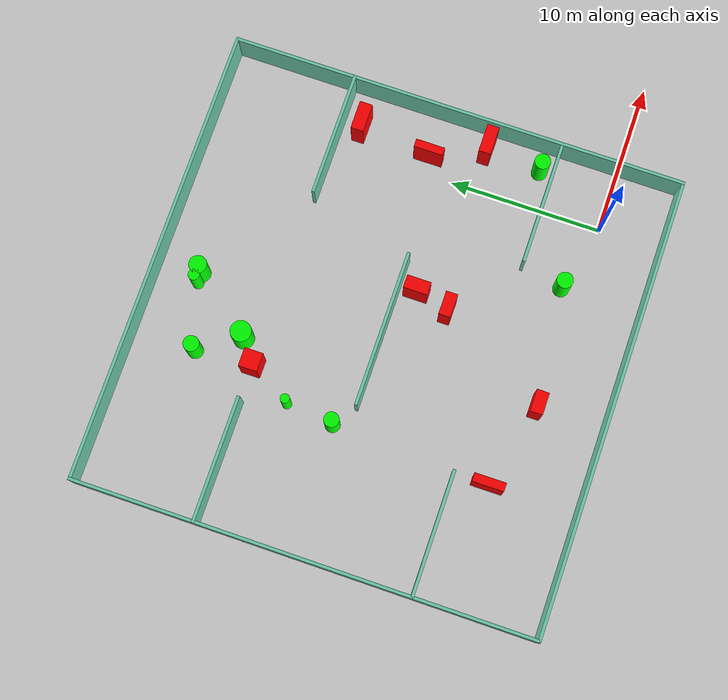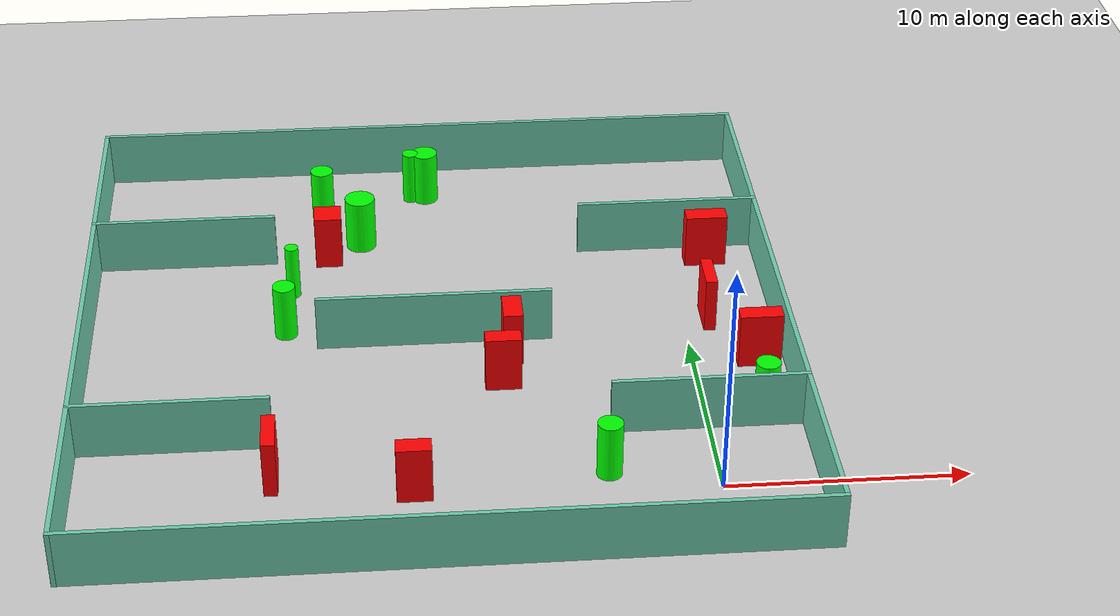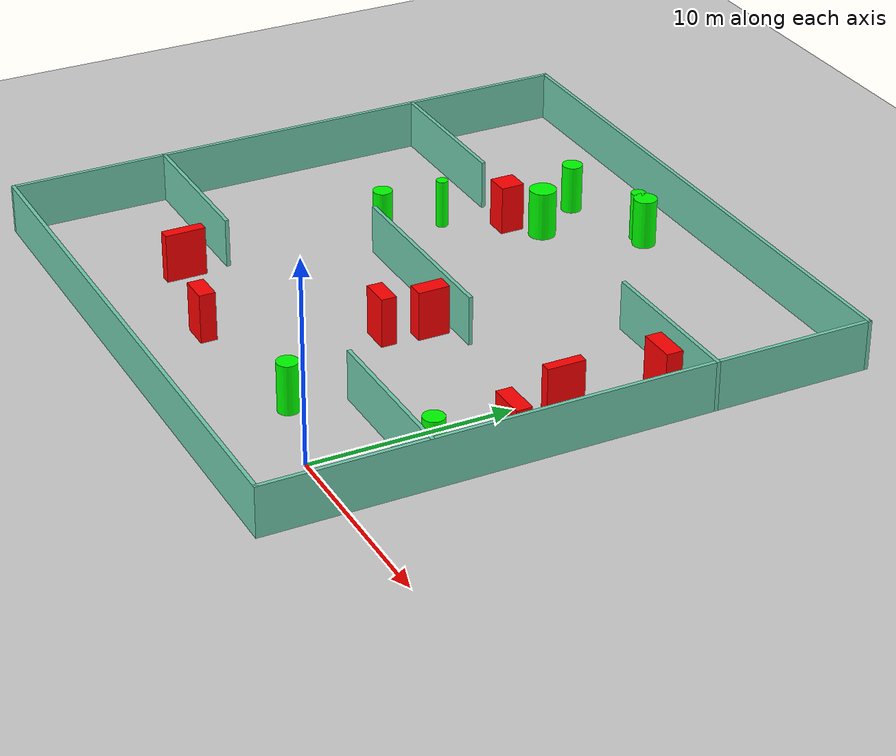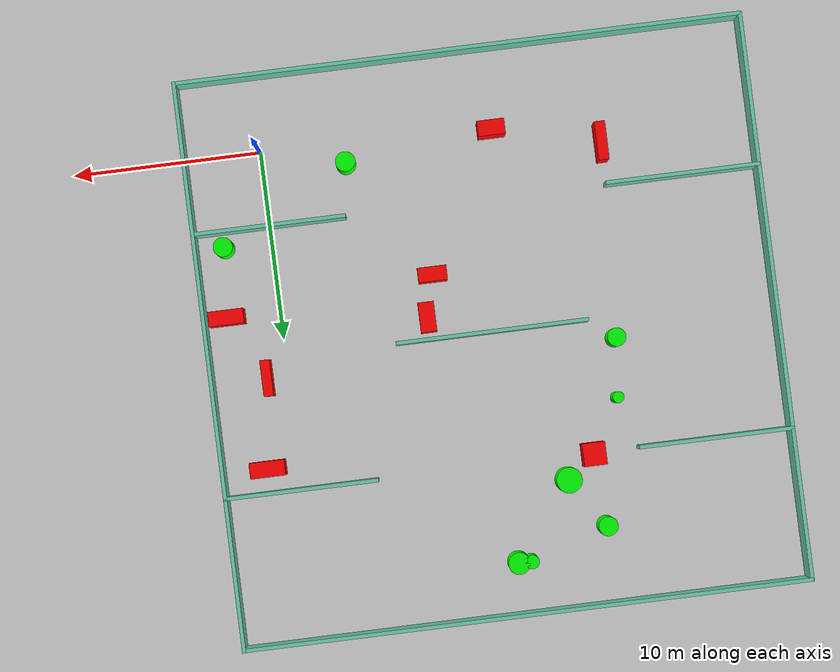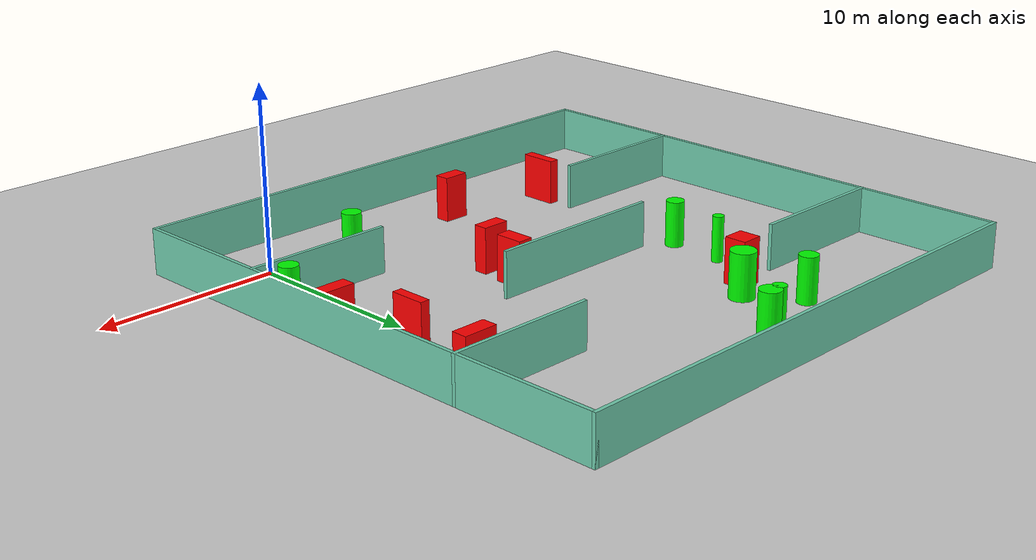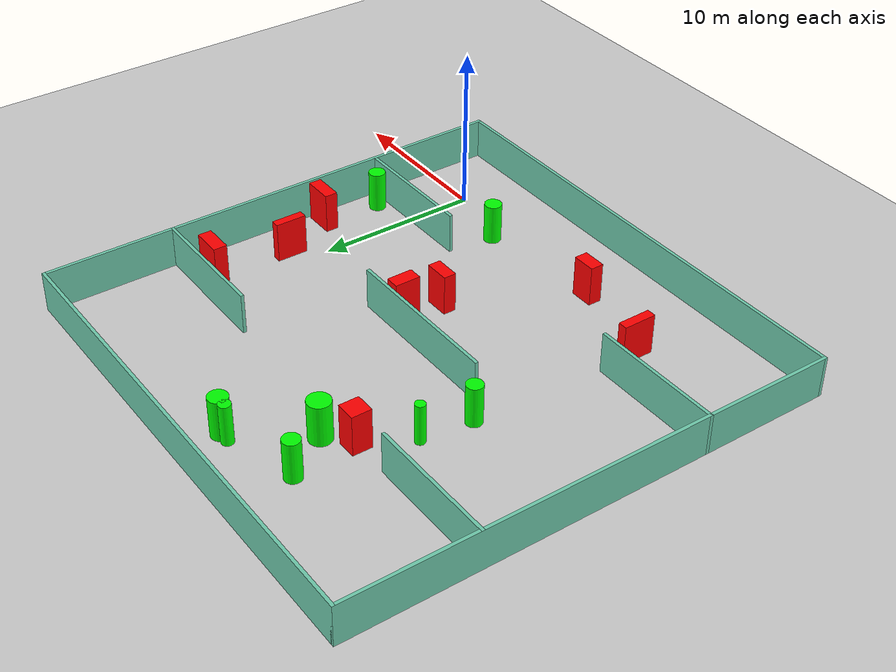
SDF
<sdf version="1.7">
 <world name="default">
  <light name="sun" type="directional">
   <pose>0 0 10 0 -0 0</pose>
   <diffuse>0.8 0.8 0.8 1</diffuse>
   <specular>0.2 0.2 0.2 1</specular>
   <attenuation>
    <range>1000</range>
    <constant>0.9</constant>
    <linear>0.01</linear>
    <quadratic>0.001</quadratic>
   </attenuation>
   <direction>-0.5 0.1 -0.9</direction>
   <spot><inner_angle>0</inner_angle><outer_angle>0</outer_angle><falloff>0</falloff></spot>
  </light>
  <model name="ground_plane">
   <static>1</static>
   <link name="link">
    <collision name="collision">
     <geometry><plane><normal>0 0 1</normal><size>100 100</size></plane></geometry>
     <surface>
      <contact><collide_bitmask>65535</collide_bitmask></contact>
      <friction><ode><mu>100</mu><mu2>50</mu2></ode></friction>
     </surface>
    </collision>
    <visual name="visual">
     <cast_shadows>0</cast_shadows>
     <geometry><plane><normal>0 0 1</normal><size>100 100</size></plane></geometry>
     <material>
      <script><uri>file://media/materials/scripts/gazebo.material</uri><name>Gazebo/Grey</name></script>
     </material>
    </visual>
   </link>
  </model>
  <gravity>0 0 -9.8</gravity>
  <magnetic_field>6e-06 2.3e-05 -4.2e-05</magnetic_field>
  <atmosphere type="adiabatic"/>
  <physics type="ode">
   <max_step_size>0.001</max_step_size>
   <real_time_factor>1</real_time_factor>
   <real_time_update_rate>1000</real_time_update_rate>
  </physics>
  <scene><ambient>0.4 0.4 0.4 1</ambient><background>0.7 0.7 0.7 1</background><shadows>1</shadows></scene>
  <spherical_coordinates>
   <surface_model>EARTH_WGS84</surface_model>
   <latitude_deg>0</latitude_deg>
   <longitude_deg>0</longitude_deg>
   <elevation>0</elevation>
   <heading_deg>0</heading_deg>
  </spherical_coordinates>
  <model name="my_base_walls">
   <link name="Wall_10">
    <collision name="Wall_10_Collision">
     <geometry><box><size>8.2 0.2 2.5</size></box></geometry>
     <pose>0 0 1.25 0 -0 0</pose>
    </collision>
    <visual name="Wall_10_Visual">
     <pose>0 0 1.25 0 -0 0</pose>
     <geometry><box><size>8.2 0.2 2.5</size></box></geometry>
     <material>
      <script><uri>file://media/materials/scripts/gazebo.material</uri><name>Gazebo/Grey</name></script>
      <ambient>0.435294 0.796078 0.67451 1</ambient>
     </material>
     <meta><layer>0</layer></meta>
    </visual>
    <pose>-11 -7 0 0 -0 0</pose>
   </link>
   <link name="Wall_12">
    <collision name="Wall_12_Collision">
     <geometry><box><size>8.2 0.2 2.5</size></box></geometry>
     <pose>0 0 1.25 0 -0 0</pose>
    </collision>
    <visual name="Wall_12_Visual">
     <pose>0 0 1.25 0 -0 0</pose>
     <geometry><box><size>8.2 0.2 2.5</size></box></geometry>
     <material>
      <script><uri>file://media/materials/scripts/gazebo.material</uri><name>Gazebo/Grey</name></script>
      <ambient>0.435294 0.796078 0.67451 1</ambient>
     </material>
     <meta><layer>0</layer></meta>
    </visual>
    <pose>-11 7 0 0 -0 0</pose>
   </link>
   <link name="Wall_14">
    <collision name="Wall_14_Collision">
     <geometry><box><size>8.2 0.2 2.5</size></box></geometry>
     <pose>0 0 1.25 0 -0 0</pose>
    </collision>
    <visual name="Wall_14_Visual">
     <pose>0 0 1.25 0 -0 0</pose>
     <geometry><box><size>8.2 0.2 2.5</size></box></geometry>
     <material>
      <script><uri>file://media/materials/scripts/gazebo.material</uri><name>Gazebo/Grey</name></script>
      <ambient>0.435294 0.796078 0.67451 1</ambient>
     </material>
     <meta><layer>0</layer></meta>
    </visual>
    <pose>11 7 0 0 -0 3.14159</pose>
   </link>
   <link name="Wall_16">
    <collision name="Wall_16_Collision">
     <geometry><box><size>10.2 0.2 2.5</size></box></geometry>
     <pose>0 0 1.25 0 -0 0</pose>
    </collision>
    <visual name="Wall_16_Visual">
     <pose>0 0 1.25 0 -0 0</pose>
     <geometry><box><size>10.2 0.2 2.5</size></box></geometry>
     <material>
      <script><uri>file://media/materials/scripts/gazebo.material</uri><name>Gazebo/Grey</name></script>
      <ambient>0.435294 0.796078 0.67451 1</ambient>
     </material>
     <meta><layer>0</layer></meta>
    </visual>
    <pose>0 0 0 0 -0 3.14159</pose>
   </link>
   <link name="Wall_2">
    <collision name="Wall_2_Collision">
     <geometry><box><size>30.2 0.2 2.5</size></box></geometry>
     <pose>0 0 1.25 0 -0 0</pose>
    </collision>
    <visual name="Wall_2_Visual">
     <pose>0 0 1.25 0 -0 0</pose>
     <geometry><box><size>30.2 0.2 2.5</size></box></geometry>
     <material>
      <script><uri>file://media/materials/scripts/gazebo.material</uri><name>Gazebo/Grey</name></script>
      <ambient>0.435294 0.796078 0.67451 1</ambient>
     </material>
     <meta><layer>0</layer></meta>
    </visual>
    <pose>0 -15 0 0 -0 3.14159</pose>
   </link>
   <link name="Wall_3">
    <collision name="Wall_3_Collision">
     <geometry><box><size>30.2 0.2 2.5</size></box></geometry>
     <pose>0 0 1.25 0 -0 0</pose>
    </collision>
    <visual name="Wall_3_Visual">
     <pose>0 0 1.25 0 -0 0</pose>
     <geometry><box><size>30.2 0.2 2.5</size></box></geometry>
     <material>
      <script><uri>file://media/materials/scripts/gazebo.material</uri><name>Gazebo/Grey</name></script>
      <ambient>0.435294 0.796078 0.67451 1</ambient>
     </material>
     <meta><layer>0</layer></meta>
    </visual>
    <pose>-15 0 0 0 -0 1.5708</pose>
   </link>
   <link name="Wall_4">
    <collision name="Wall_4_Collision">
     <geometry><box><size>30.2 0.2 2.5</size></box></geometry>
     <pose>0 0 1.25 0 -0 0</pose>
    </collision>
    <visual name="Wall_4_Visual">
     <pose>0 0 1.25 0 -0 0</pose>
     <geometry><box><size>30.2 0.2 2.5</size></box></geometry>
     <material>
      <script><uri>file://media/materials/scripts/gazebo.material</uri><name>Gazebo/Grey</name></script>
      <ambient>0.435294 0.796078 0.67451 1</ambient>
     </material>
     <meta><layer>0</layer></meta>
    </visual>
    <pose>0 15 0 0 -0 0</pose>
   </link>
   <link name="Wall_6">
    <collision name="Wall_6_Collision">
     <geometry><box><size>30.2 0.2 2.5</size></box></geometry>
     <pose>0 0 1.25 0 -0 0</pose>
    </collision>
    <visual name="Wall_6_Visual">
     <pose>0 0 1.25 0 -0 0</pose>
     <geometry><box><size>30.2 0.2 2.5</size></box></geometry>
     <material>
      <script><uri>file://media/materials/scripts/gazebo.material</uri><name>Gazebo/Grey</name></script>
      <ambient>0.435294 0.796078 0.67451 1</ambient>
     </material>
     <meta><layer>0</layer></meta>
    </visual>
    <pose>15 0 0 0 -0 1.5708</pose>
   </link>
   <link name="Wall_8">
    <collision name="Wall_8_Collision">
     <geometry><box><size>8.2 0.2 2.5</size></box></geometry>
     <pose>0 0 1.25 0 -0 0</pose>
    </collision>
    <visual name="Wall_8_Visual">
     <pose>0 0 1.25 0 -0 0</pose>
     <geometry><box><size>8.2 0.2 2.5</size></box></geometry>
     <material>
      <script><uri>file://media/materials/scripts/gazebo.material</uri><name>Gazebo/Grey</name></script>
      <ambient>0.435294 0.796078 0.67451 1</ambient>
     </material>
     <meta><layer>0</layer></meta>
    </visual>
    <pose>11 -7 0 0 -0 3.14159</pose>
   </link>
   <static>1</static>
   <pose>-11 11 0 0 -0 0</pose>
  </model>
  <model name="cylinder1">
   <static>1</static>
   <link name="link">
    <inertial>
     <mass>1</mass>
     <inertia><ixx>0.5</ixx><ixy>0</ixy><ixz>0</ixz><iyy>0.5</iyy><iyz>0</iyz><izz>1</izz></inertia>
    </inertial>
    <collision name="collision">
     <geometry><cylinder><radius>0.491930112179773</radius><length>2.5</length></cylinder></geometry>
    </collision>
    <visual name="visual">
     <geometry><cylinder><radius>0.491930112179773</radius><length>2.5</length></cylinder></geometry>
     <material>
      <ambient>0 1 0 1</ambient>
      <diffuse>0 1 0 1</diffuse>
      <specular>0.1 0.1 0.1 1</specular>
      <emissive>0 0 0 0</emissive>
     </material>
    </visual>
   </link>
   <pose>-17.436978862476575 12.116603301973297 1.25 0 0 0</pose>
  </model>
  <model name="cylinder2">
   <static>1</static>
   <link name="link">
    <inertial>
     <mass>1</mass>
     <inertia><ixx>0.5</ixx><ixy>0</ixy><ixz>0</ixz><iyy>0.5</iyy><iyz>0</iyz><izz>1</izz></inertia>
    </inertial>
    <collision name="collision">
     <geometry><cylinder><radius>0.3659171161256183</radius><length>2.5</length></cylinder></geometry>
    </collision>
    <visual name="visual">
     <geometry><cylinder><radius>0.3659171161256183</radius><length>2.5</length></cylinder></geometry>
     <material>
      <ambient>0 1 0 1</ambient>
      <diffuse>0 1 0 1</diffuse>
      <specular>0.1 0.1 0.1 1</specular>
      <emissive>0 0 0 0</emissive>
     </material>
    </visual>
   </link>
   <pose>-11.580945202860212 23.264653744453586 1.25 0 0 0</pose>
  </model>
  <model name="cylinder3">
   <static>1</static>
   <link name="link">
    <inertial>
     <mass>1</mass>
     <inertia><ixx>0.5</ixx><ixy>0</ixy><ixz>0</ixz><iyy>0.5</iyy><iyz>0</iyz><izz>1</izz></inertia>
    </inertial>
    <collision name="collision">
     <geometry><cylinder><radius>0.5137878293307554</radius><length>2.5</length></cylinder></geometry>
    </collision>
    <visual name="visual">
     <geometry><cylinder><radius>0.5137878293307554</radius><length>2.5</length></cylinder></geometry>
     <material>
      <ambient>0 1 0 1</ambient>
      <diffuse>0 1 0 1</diffuse>
      <specular>0.1 0.1 0.1 1</specular>
      <emissive>0 0 0 0</emissive>
     </material>
    </visual>
   </link>
   <pose>-15.760765253698466 21.907503000135733 1.25 0 0 0</pose>
  </model>
  <model name="cylinder4">
   <static>1</static>
   <link name="link">
    <inertial>
     <mass>1</mass>
     <inertia><ixx>0.5</ixx><ixy>0</ixy><ixz>0</ixz><iyy>0.5</iyy><iyz>0</iyz><izz>1</izz></inertia>
    </inertial>
    <collision name="collision">
     <geometry><cylinder><radius>0.5164058511669074</radius><length>2.5</length></cylinder></geometry>
    </collision>
    <visual name="visual">
     <geometry><cylinder><radius>0.5164058511669074</radius><length>2.5</length></cylinder></geometry>
     <material>
      <ambient>0 1 0 1</ambient>
      <diffuse>0 1 0 1</diffuse>
      <specular>0.1 0.1 0.1 1</specular>
      <emissive>0 0 0 0</emissive>
     </material>
    </visual>
   </link>
   <pose>2.4873738374662473 4.854047934552375 1.25 0 0 0</pose>
  </model>
  <model name="cylinder5">
   <static>1</static>
   <link name="link">
    <inertial>
     <mass>1</mass>
     <inertia><ixx>0.5</ixx><ixy>0</ixy><ixz>0</ixz><iyy>0.5</iyy><iyz>0</iyz><izz>1</izz></inertia>
    </inertial>
    <collision name="collision">
     <geometry><cylinder><radius>0.6816252865866164</radius><length>2.5</length></cylinder></geometry>
    </collision>
    <visual name="visual">
     <geometry><cylinder><radius>0.6816252865866164</radius><length>2.5</length></cylinder></geometry>
     <material>
      <ambient>0 1 0 1</ambient>
      <diffuse>0 1 0 1</diffuse>
      <specular>0.1 0.1 0.1 1</specular>
      <emissive>0 0 0 0</emissive>
     </material>
    </visual>
   </link>
   <pose>-14.034177062797227 19.26162842376611 1.25 0 0 0</pose>
  </model>
  <model name="cylinder6">
   <static>1</static>
   <link name="link">
    <inertial>
     <mass>1</mass>
     <inertia><ixx>0.5</ixx><ixy>0</ixy><ixz>0</ixz><iyy>0.5</iyy><iyz>0</iyz><izz>1</izz></inertia>
    </inertial>
    <collision name="collision">
     <geometry><cylinder><radius>0.5805935596942828</radius><length>2.5</length></cylinder></geometry>
    </collision>
    <visual name="visual">
     <geometry><cylinder><radius>0.5805935596942828</radius><length>2.5</length></cylinder></geometry>
     <material>
      <ambient>0 1 0 1</ambient>
      <diffuse>0 1 0 1</diffuse>
      <specular>0.1 0.1 0.1 1</specular>
      <emissive>0 0 0 0</emissive>
     </material>
    </visual>
   </link>
   <pose>-10.891993474375518 23.259838831429416 1.25 0 0 0</pose>
  </model>
  <model name="cylinder7">
   <static>1</static>
   <link name="link">
    <inertial>
     <mass>1</mass>
     <inertia><ixx>0.5</ixx><ixy>0</ixy><ixz>0</ixz><iyy>0.5</iyy><iyz>0</iyz><izz>1</izz></inertia>
    </inertial>
    <collision name="collision">
     <geometry><cylinder><radius>0.3039505033272448</radius><length>2.5</length></cylinder></geometry>
    </collision>
    <visual name="visual">
     <geometry><cylinder><radius>0.3039505033272448</radius><length>2.5</length></cylinder></geometry>
     <material>
      <ambient>0 1 0 1</ambient>
      <diffuse>0 1 0 1</diffuse>
      <specular>0.1 0.1 0.1 1</specular>
      <emissive>0 0 0 0</emissive>
     </material>
    </visual>
   </link>
   <pose>-17.12706049169732 15.258448352305354 1.25 0 0 0</pose>
  </model>
  <model name="cylinder8">
   <static>1</static>
   <link name="link">
    <inertial>
     <mass>1</mass>
     <inertia><ixx>0.5</ixx><ixy>0</ixy><ixz>0</ixz><iyy>0.5</iyy><iyz>0</iyz><izz>1</izz></inertia>
    </inertial>
    <collision name="collision">
     <geometry><cylinder><radius>0.5268421711353553</radius><length>2.5</length></cylinder></geometry>
    </collision>
    <visual name="visual">
     <geometry><cylinder><radius>0.5268421711353553</radius><length>2.5</length></cylinder></geometry>
     <material>
      <ambient>0 1 0 1</ambient>
      <diffuse>0 1 0 1</diffuse>
      <specular>0.1 0.1 0.1 1</specular>
      <emissive>0 0 0 0</emissive>
     </material>
    </visual>
   </link>
   <pose>-4.443488294229221 1.1896315711841297 1.25 0 0 0</pose>
  </model>
  <model name="box1">
   <static>1</static>
   <link name="link">
    <inertial>
     <mass>1</mass>
     <inertia><ixx>0.083</ixx><ixy>0</ixy><ixz>0</ixz><iyy>0.083</iyy><iyz>0</iyz><izz>0.083</izz></inertia>
    </inertial>
    <collision name="collision">
     <geometry><box><size>1.2121013055567782 1.2140031299828207 2.5</size></box></geometry>
    </collision>
    <visual name="visual">
     <geometry><box><size>1.2121013055567782 1.2140031299828207 2.5</size></box></geometry>
     <material>
      <ambient>1 0 0 1</ambient>
      <diffuse>1 0 0 1</diffuse>
      <specular>0.1 0.1 0.1 1</specular>
      <emissive>0 0 0 0</emissive>
     </material>
    </visual>
    <sensor name="my_contact" type="contact">
     <contact><collision>box_collision</collision><topic>__default_topic__</topic></contact>
    </sensor>
   </link>
   <pose>-15.516992902618934 18.067008090354047 1.25 0 0 0</pose>
  </model>
  <model name="box2">
   <static>1</static>
   <link name="link">
    <inertial>
     <mass>1</mass>
     <inertia><ixx>0.083</ixx><ixy>0</ixy><ixz>0</ixz><iyy>0.083</iyy><iyz>0</iyz><izz>0.083</izz></inertia>
    </inertial>
    <collision name="collision">
     <geometry><box><size>1.4389393403775008 0.8145896623641271 2.5</size></box></geometry>
    </collision>
    <visual name="visual">
     <geometry><box><size>1.4389393403775008 0.8145896623641271 2.5</size></box></geometry>
     <material>
      <ambient>1 0 0 1</ambient>
      <diffuse>1 0 0 1</diffuse>
      <specular>0.1 0.1 0.1 1</specular>
      <emissive>0 0 0 0</emissive>
     </material>
    </visual>
    <sensor name="my_contact" type="contact">
     <contact><collision>box_collision</collision><topic>__default_topic__</topic></contact>
    </sensor>
   </link>
   <pose>-12.2754379824373 0.35116927024458366 1.25 0 0 0</pose>
  </model>
  <model name="box3">
   <static>1</static>
   <link name="link">
    <inertial>
     <mass>1</mass>
     <inertia><ixx>0.083</ixx><ixy>0</ixy><ixz>0</ixz><iyy>0.083</iyy><iyz>0</iyz><izz>0.083</izz></inertia>
    </inertial>
    <collision name="collision">
     <geometry><box><size>1.5329607901224886 0.7705576684676763 2.5</size></box></geometry>
    </collision>
    <visual name="visual">
     <geometry><box><size>1.5329607901224886 0.7705576684676763 2.5</size></box></geometry>
     <material>
      <ambient>1 0 0 1</ambient>
      <diffuse>1 0 0 1</diffuse>
      <specular>0.1 0.1 0.1 1</specular>
      <emissive>0 0 0 0</emissive>
     </material>
    </visual>
    <sensor name="my_contact" type="contact">
     <contact><collision>box_collision</collision><topic>__default_topic__</topic></contact>
    </sensor>
   </link>
   <pose>-8.250941256710092 7.612923560872488 1.25 0 0 0</pose>
  </model>
  <model name="box4">
   <static>1</static>
   <link name="link">
    <inertial>
     <mass>1</mass>
     <inertia><ixx>0.083</ixx><ixy>0</ixy><ixz>0</ixz><iyy>0.083</iyy><iyz>0</iyz><izz>0.083</izz></inertia>
    </inertial>
    <collision name="collision">
     <geometry><box><size>1.860337958468017 0.7895587721934882 2.5</size></box></geometry>
    </collision>
    <visual name="visual">
     <geometry><box><size>1.860337958468017 0.7895587721934882 2.5</size></box></geometry>
     <material>
      <ambient>1 0 0 1</ambient>
      <diffuse>1 0 0 1</diffuse>
      <specular>0.1 0.1 0.1 1</specular>
      <emissive>0 0 0 0</emissive>
     </material>
    </visual>
    <sensor name="my_contact" type="contact">
     <contact><collision>box_collision</collision><topic>__default_topic__</topic></contact>
    </sensor>
   </link>
   <pose>2.7931444032175463 8.539695682411685 1.25 0 0 0</pose>
  </model>
  <model name="box5">
   <static>1</static>
   <link name="link">
    <inertial>
     <mass>1</mass>
     <inertia><ixx>0.083</ixx><ixy>0</ixy><ixz>0</ixz><iyy>0.083</iyy><iyz>0</iyz><izz>0.083</izz></inertia>
    </inertial>
    <collision name="collision">
     <geometry><box><size>0.5603705550821498 2.0380628578647624 2.5</size></box></geometry>
    </collision>
    <visual name="visual">
     <geometry><box><size>0.5603705550821498 2.0380628578647624 2.5</size></box></geometry>
     <material>
      <ambient>1 0 0 1</ambient>
      <diffuse>1 0 0 1</diffuse>
      <specular>0.1 0.1 0.1 1</specular>
      <emissive>0 0 0 0</emissive>
     </material>
    </visual>
    <sensor name="my_contact" type="contact">
     <contact><collision>box_collision</collision><topic>__default_topic__</topic></contact>
    </sensor>
   </link>
   <pose>-17.95517438238102 1.7611772994068158 1.25 0 0 0</pose>
  </model>
  <model name="box6">
   <static>1</static>
   <link name="link">
    <inertial>
     <mass>1</mass>
     <inertia><ixx>0.083</ixx><ixy>0</ixy><ixz>0</ixz><iyy>0.083</iyy><iyz>0</iyz><izz>0.083</izz></inertia>
    </inertial>
    <collision name="collision">
     <geometry><box><size>0.5165816902793038 1.9119406927529372 2.5</size></box></geometry>
    </collision>
    <visual name="visual">
     <geometry><box><size>0.5165816902793038 1.9119406927529372 2.5</size></box></geometry>
     <material>
      <ambient>1 0 0 1</ambient>
      <diffuse>1 0 0 1</diffuse>
      <specular>0.1 0.1 0.1 1</specular>
      <emissive>0 0 0 0</emissive>
     </material>
    </visual>
    <sensor name="my_contact" type="contact">
     <contact><collision>box_collision</collision><topic>__default_topic__</topic></contact>
    </sensor>
   </link>
   <pose>1.0612542552802253 11.962446900837925 1.25 0 0 0</pose>
  </model>
  <model name="box7">
   <static>1</static>
   <link name="link">
    <inertial>
     <mass>1</mass>
     <inertia><ixx>0.083</ixx><ixy>0</ixy><ixz>0</ixz><iyy>0.083</iyy><iyz>0</iyz><izz>0.083</izz></inertia>
    </inertial>
    <collision name="collision">
     <geometry><box><size>0.8438817209868401 1.5860409515352538 2.5</size></box></geometry>
    </collision>
    <visual name="visual">
     <geometry><box><size>0.8438817209868401 1.5860409515352538 2.5</size></box></geometry>
     <material>
      <ambient>1 0 0 1</ambient>
      <diffuse>1 0 0 1</diffuse>
      <specular>0.1 0.1 0.1 1</specular>
      <emissive>0 0 0 0</emissive>
     </material>
    </visual>
    <sensor name="my_contact" type="contact">
     <contact><collision>box_collision</collision><topic>__default_topic__</topic></contact>
    </sensor>
   </link>
   <pose>-7.707001945332902 9.831699156195368 1.25 0 0 0</pose>
  </model>
  <model name="box8">
   <static>1</static>
   <link name="link">
    <inertial>
     <mass>1</mass>
     <inertia><ixx>0.083</ixx><ixy>0</ixy><ixz>0</ixz><iyy>0.083</iyy><iyz>0</iyz><izz>0.083</izz></inertia>
    </inertial>
    <collision name="collision">
     <geometry><box><size>1.8595947047545895 0.8350674821796178 2.5</size></box></geometry>
    </collision>
    <visual name="visual">
     <geometry><box><size>1.8595947047545895 0.8350674821796178 2.5</size></box></geometry>
     <material>
      <ambient>1 0 0 1</ambient>
      <diffuse>1 0 0 1</diffuse>
      <specular>0.1 0.1 0.1 1</specular>
      <emissive>0 0 0 0</emissive>
     </material>
    </visual>
    <sensor name="my_contact" type="contact">
     <contact><collision>box_collision</collision><topic>__default_topic__</topic></contact>
    </sensor>
   </link>
   <pose>1.6180165842087426 16.71725853168158 1.25 0 0 0</pose>
  </model>
 </world>
</sdf>
